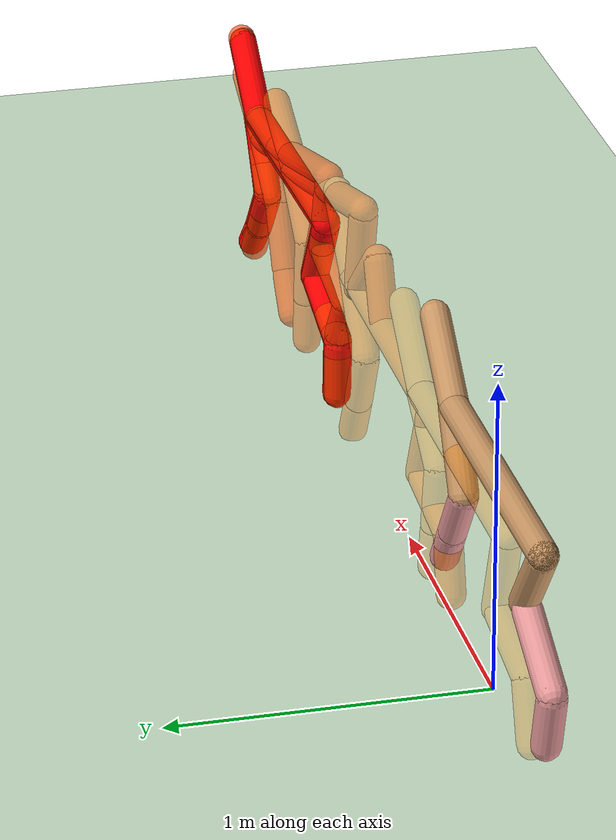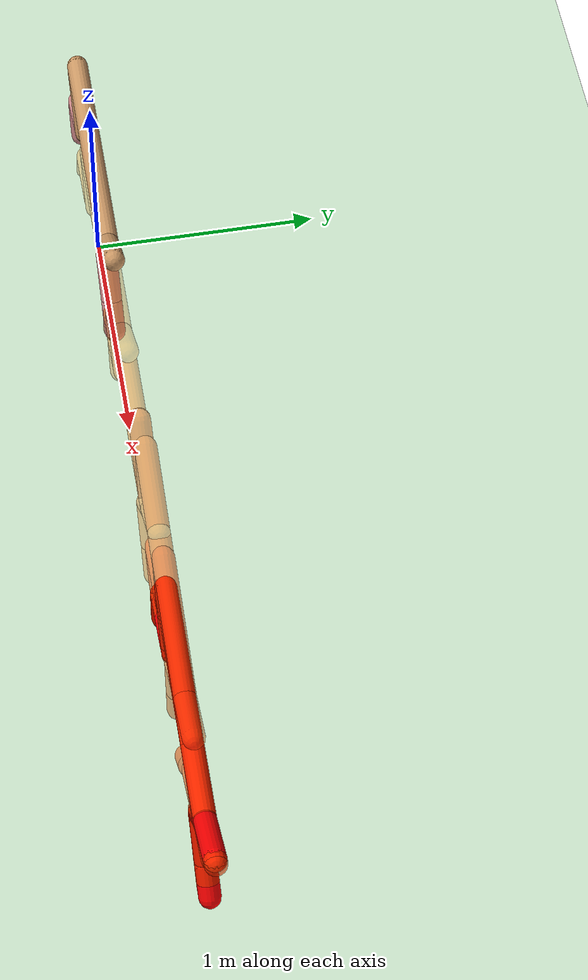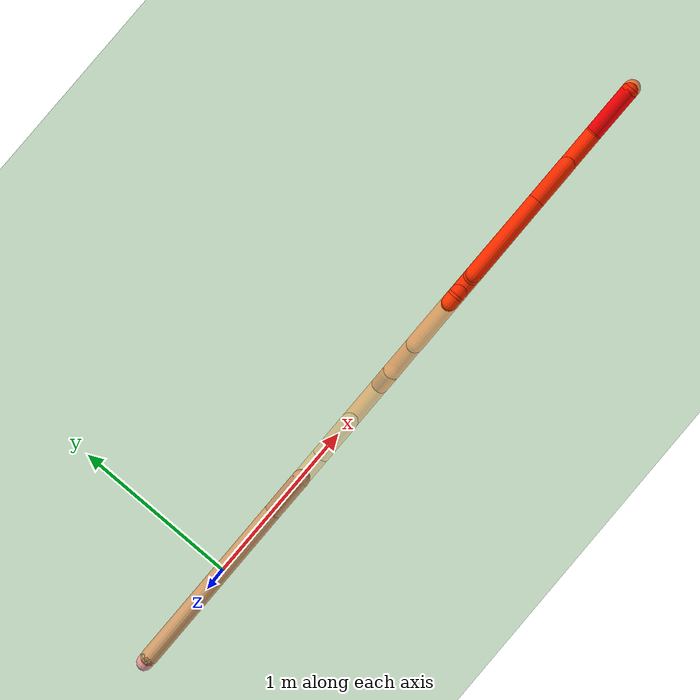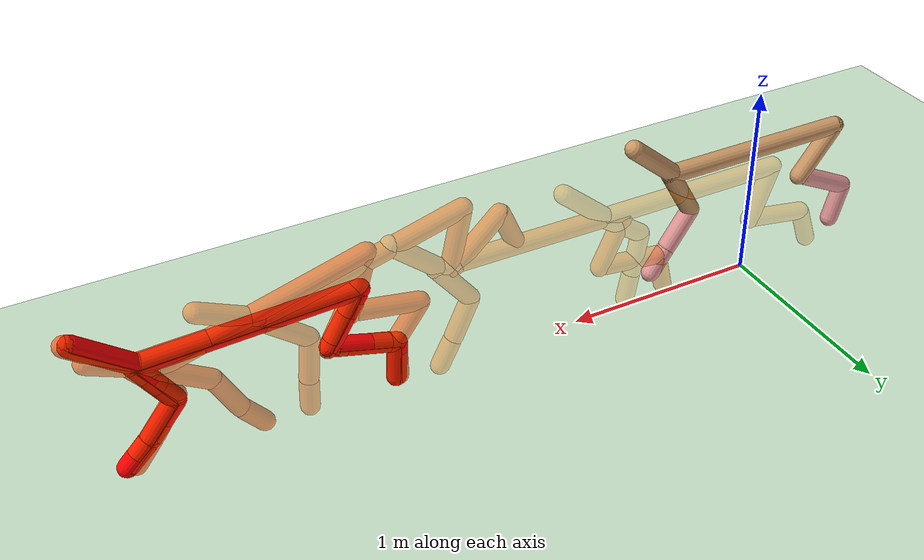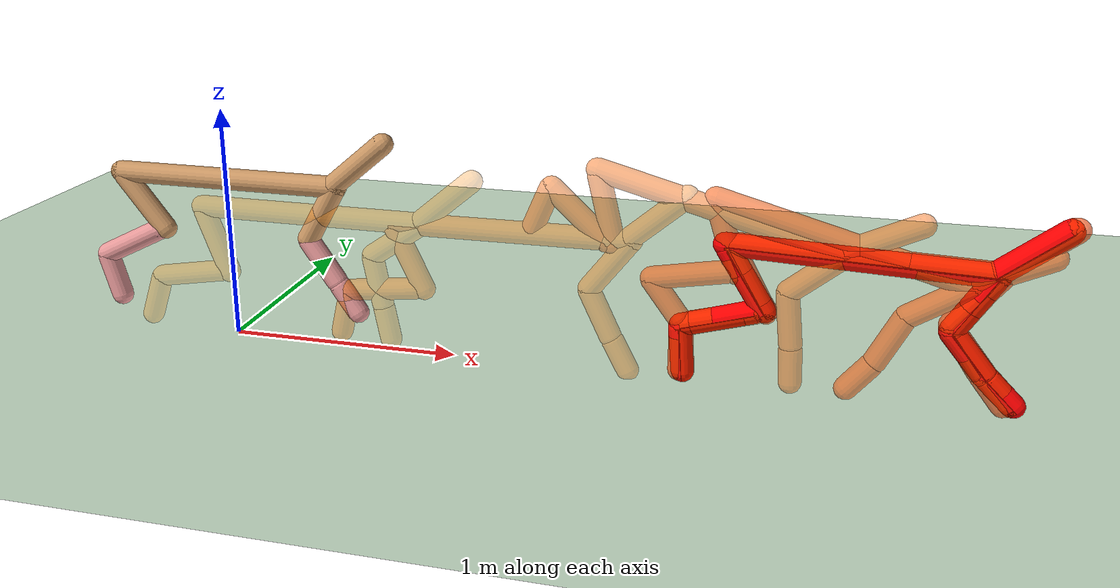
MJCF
<mujoco model="cheetah">
  <compiler angle="radian" coordinate="local" inertiafromgeom="true" settotalmass="14"/>
  <option solver="Newton"
            iterations="5"
            noslip_iterations="0"
            noslip_tolerance="1e-8"/>
  <default>
  <geom margin="0.0" gap="0.0"
        solimp="0.0001 0.8 0.001 0.5 2"
        solref="0.02 1"
        conaffinity="0" condim="3" contype="1" friction=".4 .1 .1" rgba="0.8 0.6 .4 1"/>
    <joint armature=".1" damping=".01" limited="true" solimplimit="0 .8 .03" solreflimit=".02 1" stiffness="8"/>
    <motor ctrllimited="false" ctrlrange="-1 1"/>
  </default>
  <size nstack="300000" nuser_geom="1"/>
  <option gravity="0 0 -9.81" timestep="0.02"/>
  <asset>
    <texture type="skybox" builtin="gradient" rgb1="0.5 .5 .5" rgb2="0.9 0.9 0.9" width="512" height="3072"/>
    <texture type="2d" name="groundplane" builtin="checker" mark="edge" rgb1="0.9 0.9 0.9" rgb2="0.5 0.5 0.5"
      markrgb="0.8 0.8 0.8" width="300" height="300"/>
    <material name="groundplane" texture="groundplane" texuniform="true" texrepeat="1.5 1.5" reflectance="0.2"/>
  </asset>
  <worldbody>
    <light cutoff="100" diffuse="1 1 1" dir="-0 0 -1.3" directional="true" exponent="1" pos="0 0 1.3" specular=".1 .1 .1"/>
    <geom conaffinity="1" condim="3" material="groundplane" name="floor" pos="0 0 0" rgba="0.8 0.9 0.8 1" size="40 40 40" type="plane"/>
    <body name="torso" pos="0 0 .7">
      <camera name="track" mode="trackcom" pos="0 -3 0.3" xyaxes="1 0 0 0 0 1"/>
      <joint armature="0" axis="1 0 0" damping="0" limited="false" name="rootx" pos="0 0 0" stiffness="0" type="slide"/>
      <joint armature="0" axis="0 0 1" damping="0" limited="false" name="rootz" pos="0 0 0" stiffness="0" type="slide"/>
      <joint armature="0" axis="0 1 0" damping="0" limited="false" name="rooty" pos="0 0 0" stiffness="0" type="hinge"/>
      <geom fromto="-.5 0 0 .5 0 0" name="torso" size="0.046" type="capsule"/>
      <geom axisangle="0 1 0 .87" name="head" pos=".6 0 .1" size="0.046 .15" type="capsule"/>
      <body name="bthigh" pos="-.5 0 0">
        <joint axis="0 1 0" damping="6" name="bthigh" pos="0 0 0" range="-.52 1.05" stiffness="240" type="hinge"/>
        <geom axisangle="0 1 0 -3.8" name="bthigh" pos=".1 0 -.13" size="0.046 .145" type="capsule"/>
        <body name="bshin" pos=".16 0 -.25">
          <joint axis="0 1 0" damping="4.5" name="bshin" pos="0 0 0" range="-.785 .785" stiffness="180" type="hinge"/>
          <geom axisangle="0 1 0 -2.03" name="bshin" pos="-.14 0 -.07" rgba="0.9 0.6 0.6 1" size="0.046 .15" type="capsule"/>
          <body name="bfoot" pos="-.28 0 -.14">
            <joint axis="0 1 0" damping="3" name="bfoot" pos="0 0 0" range="-.4 .785" stiffness="120" type="hinge"/>
            <geom axisangle="0 1 0 -.27" name="bfoot" pos=".03 0 -.097" rgba="0.9 0.6 0.6 1" size="0.046 .094" type="capsule"/>
          </body>
        </body>
      </body>
      <body name="fthigh" pos=".5 0 0">
        <joint axis="0 1 0" damping="4.5" name="fthigh" pos="0 0 0" range="-1 .7" stiffness="180" type="hinge"/>
        <geom axisangle="0 1 0 .52" name="fthigh" pos="-.07 0 -.12" size="0.046 .133" type="capsule"/>
        <body name="fshin" pos="-.14 0 -.24">
          <joint axis="0 1 0" damping="3" name="fshin" pos="0 0 0" range="-1.2 .87" stiffness="120" type="hinge"/>
          <geom axisangle="0 1 0 -.6" name="fshin" pos=".065 0 -.09" rgba="0.9 0.6 0.6 1" size="0.046 .106" type="capsule"/>
          <body name="ffoot" pos=".13 0 -.18">
            <joint axis="0 1 0" damping="1.5" name="ffoot" pos="0 0 0" range="-.5 .5" stiffness="60" type="hinge"/>
            <geom axisangle="0 1 0 -.6" name="ffoot" pos=".045 0 -.07" rgba="0.9 0.6 0.6 1" size="0.046 .07" type="capsule"/>
          </body>
        </body>
      </body>
    </body>

        <geom type="capsule" size="0.046 0.5 0.0" pos="0.0 0.0 0.7" quat="0.7071067811865476 0.0 -0.7071067811865475 0.0" rgba="1.0 0.6 0.0 0.2" contype="0" conaffinity="0"/>
        <geom type="capsule" size="0.046 0.15 0.0" pos="0.6 0.0 0.7999999999999999" quat="0.9068700422993365 0.0 0.4214104013666481 0.0" rgba="1.0 0.6 0.0 0.2" contype="0" conaffinity="0"/>
        <geom type="capsule" size="0.046 0.145 0.0" pos="-0.4 0.0 0.57" quat="0.32328956686350335 0.0 0.9463000876874145 0.0" rgba="1.0 0.6 0.0 0.2" contype="0" conaffinity="0"/>
        <geom type="capsule" size="0.046 0.15 0.0" pos="-0.48 0.0 0.37999999999999995" quat="0.5276199315484069 0.0 -0.8494805517684643 0.0" rgba="1.0 0.6 0.0 0.2" contype="0" conaffinity="0"/>
        <geom type="capsule" size="0.046 0.094 0.0" pos="-0.59 0.0 0.21299999999999994" quat="0.9909013312045479 0.0 -0.1345903110073483 0.0" rgba="1.0 0.6 0.0 0.2" contype="0" conaffinity="0"/>
        <geom type="capsule" size="0.046 0.133 0.0" pos="0.43 0.0 0.58" quat="0.9663899781345131 0.0 0.2570805518921552 0.0" rgba="1.0 0.6 0.0 0.2" contype="0" conaffinity="0"/>
        <geom type="capsule" size="0.046 0.106 0.0" pos="0.425 0.0 0.37" quat="0.955336489125606 0.0 -0.29552020666133955 0.0" rgba="1.0 0.6 0.0 0.2" contype="0" conaffinity="0"/>
        <geom type="capsule" size="0.046 0.07 0.0" pos="0.535 0.0 0.20999999999999996" quat="0.955336489125606 0.0 -0.29552020666133955 0.0" rgba="1.0 0.6 0.0 0.2" contype="0" conaffinity="0"/>
        <geom type="capsule" size="0.046 0.5 0.0" pos="0.3757597918607597 0.0 0.5716085944845795" quat="0.7071409914781057 0.0 -0.7070725692397929 0.0" rgba="1.0 0.533 0.0 0.289" contype="0" conaffinity="0"/>
        <geom type="capsule" size="0.046 0.15 0.0" pos="0.9757694654175257 0.0 0.6715505358220533" quat="0.9068496526320862 0.0 0.4214542769044641 0.0" rgba="1.0 0.533 0.0 0.289" contype="0" conaffinity="0"/>
        <geom type="capsule" size="0.046 0.145 0.0" pos="-0.0687048488903039 0.0 0.41733321231983245" quat="0.1731950705370843 0.0 0.9848875405555979 0.0" rgba="1.0 0.533 0.0 0.289" contype="0" conaffinity="0"/>
        <geom type="capsule" size="0.046 0.15 0.0" pos="-0.202391616951191 0.0 0.2577819346825645" quat="0.6450282846393013 0.0 -0.764158695570024 0.0" rgba="1.0 0.533 0.0 0.289" contype="0" conaffinity="0"/>
        <geom type="capsule" size="0.046 0.094 0.0" pos="-0.38720426514459116 0.0 0.13401590175482242" quat="0.9858901352941377 0.0 0.16739367111604575 0.0" rgba="1.0 0.533 0.0 0.289" contype="0" conaffinity="0"/>
        <geom type="capsule" size="0.046 0.133 0.0" pos="0.7613184036994838 0.0 0.492800011973812" quat="0.8870065506672206 0.0 0.46175683976898463 0.0" rgba="1.0 0.533 0.0 0.289" contype="0" conaffinity="0"/>
        <geom type="capsule" size="0.046 0.106 0.0" pos="0.6698403176612077 0.0 0.3054226539770445" quat="0.9958230956408873 0.0 -0.09130368113170625 0.0" rgba="1.0 0.533 0.0 0.289" contype="0" conaffinity="0"/>
        <geom type="capsule" size="0.046 0.07 0.0" pos="0.7061020639221286 0.0 0.11465836450764037" quat="0.9955308396762497 0.0 -0.09443700150630316 0.0" rgba="1.0 0.533 0.0 0.289" contype="0" conaffinity="0"/>
        <geom type="capsule" size="0.046 0.5 0.0" pos="1.2448169279215695 0.0 0.5707966474003805" quat="0.7046606271697095 0.0 -0.7095445021397824 0.0" rgba="1.0 0.467 0.0 0.378" contype="0" conaffinity="0"/>
        <geom type="capsule" size="0.046 0.15 0.0" pos="1.8441119364773773 0.0 0.6749383427970583" quat="0.9083199421399065 0.0 0.4182760843162766 0.0" rgba="1.0 0.467 0.0 0.378" contype="0" conaffinity="0"/>
        <geom type="capsule" size="0.046 0.145 0.0" pos="0.814709091259254 0.0 0.4189628154041264" quat="0.21962154096158407 0.0 0.9755851468455531 0.0" rgba="1.0 0.467 0.0 0.378" contype="0" conaffinity="0"/>
        <geom type="capsule" size="0.046 0.15 0.0" pos="0.692353543516237 0.0 0.26936682365639886" quat="0.6631650788492296 0.0 -0.7484731646457977 0.0" rgba="1.0 0.467 0.0 0.378" contype="0" conaffinity="0"/>
        <geom type="capsule" size="0.046 0.094 0.0" pos="0.5168514783509595 0.0 0.15032390563736442" quat="0.9933804138985987 0.0 0.11487102890916003 0.0" rgba="1.0 0.467 0.0 0.378" contype="0" conaffinity="0"/>
        <geom type="capsule" size="0.046 0.133 0.0" pos="1.6589129957411237 0.0 0.4650595570562044" quat="0.9462919259905692 0.0 0.3233134559604024 0.0" rgba="1.0 0.467 0.0 0.378" contype="0" conaffinity="0"/>
        <geom type="capsule" size="0.046 0.106 0.0" pos="1.623107322269771 0.0 0.25679152440341346" quat="0.9756157724324233 0.0 -0.2194854541446561 0.0" rgba="1.0 0.467 0.0 0.378" contype="0" conaffinity="0"/>
        <geom type="capsule" size="0.046 0.07 0.0" pos="1.7099000668088435 0.0 0.08303038788053786" quat="0.9706829237315477 0.0 -0.24036360285195907 0.0" rgba="1.0 0.467 0.0 0.378" contype="0" conaffinity="0"/>
        <geom type="capsule" size="0.046 0.5 0.0" pos="2.088113827382586 0.0 0.7247477390407485" quat="0.7943606933817023 0.0 -0.6074463670235761 0.0" rgba="1.0 0.4 0.0 0.467" contype="0" conaffinity="0"/>
        <geom type="capsule" size="0.046 0.15 0.0" pos="2.6933534303818103 0.0 0.6640433490731267" quat="0.8432171905298761 0.0 0.5375730365214596 0.0" rgba="1.0 0.4 0.0 0.467" contype="0" conaffinity="0"/>
        <geom type="capsule" size="0.046 0.145 0.0" pos="1.6427611163821065 0.0 0.6960139309534362" quat="0.11543338446738999 0.0 0.9933152237585023 0.0" rgba="1.0 0.4 0.0 0.467" contype="0" conaffinity="0"/>
        <geom type="capsule" size="0.046 0.15 0.0" pos="1.5320634105210051 0.0 0.6674590548012541" quat="0.9158092990322744 0.0 -0.401613405909233 0.0" rgba="1.0 0.4 0.0 0.467" contype="0" conaffinity="0"/>
        <geom type="capsule" size="0.046 0.094 0.0" pos="1.3792525878659823 0.0 0.6785055232422215" quat="0.9795594822803799 0.0 0.20115471825088752 0.0" rgba="1.0 0.4 0.0 0.467" contype="0" conaffinity="0"/>
        <geom type="capsule" size="0.046 0.133 0.0" pos="2.4626102267188243 0.0 0.5063980396340974" quat="0.904143604027456 0.0 0.42722867798901676 0.0" rgba="1.0 0.4 0.0 0.467" contype="0" conaffinity="0"/>
        <geom type="capsule" size="0.046 0.106 0.0" pos="2.3693849110561707 0.0 0.3090314828184392" quat="0.9985338733045175 0.0 -0.054130433800938293 0.0" rgba="1.0 0.4 0.0 0.467" contype="0" conaffinity="0"/>
        <geom type="capsule" size="0.046 0.07 0.0" pos="2.385530102545593 0.0 0.11579984462061702" quat="0.9997501333589416 0.0 -0.022353318518251286 0.0" rgba="1.0 0.4 0.0 0.467" contype="0" conaffinity="0"/>
        <geom type="capsule" size="0.046 0.5 0.0" pos="2.549705671850395 0.0 0.6414348950499609" quat="0.795352604582661 0.0 -0.6061470402332897 0.0" rgba="1.0 0.333 0.0 0.556" contype="0" conaffinity="0"/>
        <geom type="capsule" size="0.046 0.15 0.0" pos="3.1547435776252213 0.0 0.5787521017521773" quat="0.8423373110384603 0.0 0.5389506975897668 0.0" rgba="1.0 0.333 0.0 0.556" contype="0" conaffinity="0"/>
        <geom type="capsule" size="0.046 0.145 0.0" pos="2.116203923408119 0.0 0.6173740871878768" quat="0.15118864448761246 0.0 0.9885049285552391 0.0" rgba="1.0 0.333 0.0 0.556" contype="0" conaffinity="0"/>
        <geom type="capsule" size="0.046 0.15 0.0" pos="1.976852189764705 0.0 0.4555532365092978" quat="0.6413316585069353 0.0 -0.7672637771957854 0.0" rgba="1.0 0.333 0.0 0.556" contype="0" conaffinity="0"/>
        <geom type="capsule" size="0.046 0.094 0.0" pos="1.885696651065655 0.0 0.34729158782443026" quat="0.9497953850310271 0.0 -0.31287174141133745 0.0" rgba="1.0 0.333 0.0 0.556" contype="0" conaffinity="0"/>
        <geom type="capsule" size="0.046 0.133 0.0" pos="2.913445301635843 0.0 0.4361121079880903" quat="0.8747670181815025 0.0 0.4845437688195392 0.0" rgba="1.0 0.333 0.0 0.556" contype="0" conaffinity="0"/>
        <geom type="capsule" size="0.046 0.106 0.0" pos="2.7475194634866376 0.0 0.26306264500719745" quat="0.9727173084243087 0.0 0.23199361605821875 0.0" rgba="1.0 0.333 0.0 0.556" contype="0" conaffinity="0"/>
        <geom type="capsule" size="0.046 0.07 0.0" pos="2.6454546815772892 0.0 0.09986334943288072" quat="0.9418491306483066 0.0 0.3360360324385304 0.0" rgba="1.0 0.333 0.0 0.556" contype="0" conaffinity="0"/>
        <geom type="capsule" size="0.046 0.5 0.0" pos="2.629955119171622 0.0 0.5813721124437046" quat="0.7193719644556403 0.0 -0.6946250619976455 0.0" rgba="1.0 0.267 0.0 0.644" contype="0" conaffinity="0"/>
        <geom type="capsule" size="0.046 0.15 0.0" pos="3.2330868783118163 0.0 0.6603156436318577" quat="0.8993570525226495 0.0 0.4372149266410885 0.0" rgba="1.0 0.267 0.0 0.644" contype="0" conaffinity="0"/>
        <geom type="capsule" size="0.046 0.145 0.0" pos="2.209111344805196 0.0 0.45505341397498444" quat="0.24945246740783017 0.0 0.9683870437506614 0.0" rgba="1.0 0.267 0.0 0.644" contype="0" conaffinity="0"/>
        <geom type="capsule" size="0.046 0.15 0.0" pos="2.0989943885539306 0.0 0.2859601547081647" quat="0.6084473004511252 0.0 -0.7935942808348221 0.0" rgba="1.0 0.267 0.0 0.644" contype="0" conaffinity="0"/>
        <geom type="capsule" size="0.046 0.094 0.0" pos="1.9508775857113194 0.0 0.143164582064152" quat="0.9999996074525547 0.0 0.0008860557185038087 0.0" rgba="1.0 0.267 0.0 0.644" contype="0" conaffinity="0"/>
        <geom type="capsule" size="0.046 0.133 0.0" pos="3.0432761130643766 0.0 0.45506552372769415" quat="0.9455765671862919 0.0 0.3253996859067142 0.0" rgba="1.0 0.267 0.0 0.644" contype="0" conaffinity="0"/>
        <geom type="capsule" size="0.046 0.106 0.0" pos="3.0208779836471247 0.0 0.2555232585601527" quat="0.9569976352259104 0.0 -0.29009571898257175 0.0" rgba="1.0 0.267 0.0 0.644" contype="0" conaffinity="0"/>
        <geom type="capsule" size="0.046 0.07 0.0" pos="3.133778955757559 0.0 0.0974772426508346" quat="0.9464996803382765 0.0 -0.32270474914314556 0.0" rgba="1.0 0.267 0.0 0.644" contype="0" conaffinity="0"/>
        <geom type="capsule" size="0.046 0.5 0.0" pos="2.617644148989102 0.0 0.5779004987252387" quat="0.7183847403453809 0.0 -0.695646005407132 0.0" rgba="1.0 0.2 0.0 0.733" contype="0" conaffinity="0"/>
        <geom type="capsule" size="0.046 0.15 0.0" pos="3.2205492459813665 0.0 0.6585568315252592" quat="0.8999770732367434 0.0 0.43593722902297 0.0" rgba="1.0 0.2 0.0 0.733" contype="0" conaffinity="0"/>
        <geom type="capsule" size="0.046 0.145 0.0" pos="2.203758712165191 0.0 0.4542318630739667" quat="0.27329534455196625 0.0 0.9619301713982268 0.0" rgba="1.0 0.2 0.0 0.733" contype="0" conaffinity="0"/>
        <geom type="capsule" size="0.046 0.15 0.0" pos="2.1007577052003947 0.0 0.2843056154053768" quat="0.60049253515499 0.0 -0.7996303616191253 0.0" rgba="1.0 0.2 0.0 0.733" contype="0" conaffinity="0"/>
        <geom type="capsule" size="0.046 0.094 0.0" pos="1.9607352024521878 0.0 0.13896653702408535" quat="0.9993929828724879 0.0 -0.03483770637156104 0.0" rgba="1.0 0.2 0.0 0.733" contype="0" conaffinity="0"/>
        <geom type="capsule" size="0.046 0.133 0.0" pos="3.0423820358553977 0.0 0.44488600924799204" quat="0.9607468195106179 0.0 0.2774266548120998 0.0" rgba="1.0 0.2 0.0 0.733" contype="0" conaffinity="0"/>
        <geom type="capsule" size="0.046 0.106 0.0" pos="3.038048067984621 0.0 0.24232803593753666" quat="0.9453036036495508 0.0 -0.32619181002467357 0.0" rgba="1.0 0.2 0.0 0.733" contype="0" conaffinity="0"/>
        <geom type="capsule" size="0.046 0.07 0.0" pos="3.1649620658572126 0.0 0.09537627760792122" quat="0.9266444127453953 0.0 -0.3759390008069675 0.0" rgba="1.0 0.2 0.0 0.733" contype="0" conaffinity="0"/>
        <geom type="capsule" size="0.046 0.5 0.0" pos="2.6129057013035455 0.0 0.5762744062169568" quat="0.7196576670737775 0.0 -0.6943290590360797 0.0" rgba="1.0 0.133 0.0 0.822" contype="0" conaffinity="0"/>
        <geom type="capsule" size="0.046 0.15 0.0" pos="3.2161022098280836 0.0 0.6547216630447575" quat="0.8991771095059287 0.0 0.43758487832712295 0.0" rgba="1.0 0.133 0.0 0.822" contype="0" conaffinity="0"/>
        <geom type="capsule" size="0.046 0.145 0.0" pos="2.19926047208637 0.0 0.45454578573470267" quat="0.2739080306479449 0.0 0.9617558893745151 0.0" rgba="1.0 0.133 0.0 0.822" contype="0" conaffinity="0"/>
        <geom type="capsule" size="0.046 0.15 0.0" pos="2.096501058344291 0.0 0.2844041467233531" quat="0.5997582872600585 0.0 -0.8001812275121689 0.0" rgba="1.0 0.133 0.0 0.822" contype="0" conaffinity="0"/>
        <geom type="capsule" size="0.046 0.094 0.0" pos="1.9577207135500918 0.0 0.13891230242418467" quat="0.9991762641578217 0.0 -0.04058069915143302 0.0" rgba="1.0 0.133 0.0 0.822" contype="0" conaffinity="0"/>
        <geom type="capsule" size="0.046 0.133 0.0" pos="3.03781718181505 0.0 0.44127846368267853" quat="0.9610259052305964 0.0 0.2764583322595156 0.0" rgba="1.0 0.133 0.0 0.822" contype="0" conaffinity="0"/>
        <geom type="capsule" size="0.046 0.106 0.0" pos="3.03471409875223 0.0 0.2394006733280618" quat="0.9433828332529028 0.0 -0.33170593893345607 0.0" rgba="1.0 0.133 0.0 0.822" contype="0" conaffinity="0"/>
        <geom type="capsule" size="0.046 0.07 0.0" pos="3.1638291723089114 0.0 0.09440825575610284" quat="0.9228684203797112 0.0 -0.3851154095409018 0.0" rgba="1.0 0.133 0.0 0.822" contype="0" conaffinity="0"/>
        <geom type="capsule" size="0.046 0.5 0.0" pos="2.610194775475432 0.0 0.5750545208660466" quat="0.7205926345353296 0.0 -0.6933586770593072 0.0" rgba="1.0 0.067 0.0 0.911" contype="0" conaffinity="0"/>
        <geom type="capsule" size="0.046 0.15 0.0" pos="3.213600511400862 0.0 0.6518758580861855" quat="0.8985866396810865 0.0 0.43879613829961295 0.0" rgba="1.0 0.067 0.0 0.911" contype="0" conaffinity="0"/>
        <geom type="capsule" size="0.046 0.145 0.0" pos="2.1966805196584844 0.0 0.4547223639301643" quat="0.2741866668672378 0.0 0.9616764901526054 0.0" rgba="1.0 0.067 0.0 0.911" contype="0" conaffinity="0"/>
        <geom type="capsule" size="0.046 0.15 0.0" pos="2.0940455417734567 0.0 0.2844345628478645" quat="0.5992952462556634 0.0 -0.8005280805914079 0.0" rgba="1.0 0.067 0.0 0.911" contype="0" conaffinity="0"/>
        <geom type="capsule" size="0.046 0.094 0.0" pos="1.9560214627503196 0.0 0.13885025458444172" quat="0.9990284377577916 0.0 -0.04407017757198343 0.0" rgba="1.0 0.067 0.0 0.911" contype="0" conaffinity="0"/>
        <geom type="capsule" size="0.046 0.133 0.0" pos="3.035063423769526 0.0 0.43870736653861264" quat="0.9610344551014448 0.0 0.2764286094236067 0.0" rgba="1.0 0.067 0.0 0.911" contype="0" conaffinity="0"/>
        <geom type="capsule" size="0.046 0.106 0.0" pos="3.032601539812154 0.0 0.23736486792904724" quat="0.9421321858231875 0.0 -0.33524162097809873 0.0" rgba="1.0 0.067 0.0 0.911" contype="0" conaffinity="0"/>
        <geom type="capsule" size="0.046 0.07 0.0" pos="3.1631858186632544 0.0 0.09372064099000729" quat="0.9201564230238226 0.0 -0.39155096369183434 0.0" rgba="1.0 0.067 0.0 0.911" contype="0" conaffinity="0"/>
        <geom type="capsule" size="0.046 0.5 0.0" pos="2.6087493329202016 0.0 0.5767945532330596" quat="0.7197441257239147 0.0 -0.694239435271375 0.0" rgba="1.0 0.0 0.0 1.0" contype="0" conaffinity="0"/>
        <geom type="capsule" size="0.046 0.15 0.0" pos="3.2119653606819702 0.0 0.655091576492653" quat="0.8991226104467027 0.0 0.4376968487246701 0.0" rgba="1.0 0.0 0.0 1.0" contype="0" conaffinity="0"/>
        <geom type="capsule" size="0.046 0.145 0.0" pos="2.1962516578426943 0.0 0.4559011559879057" quat="0.2778522722883518 0.0 0.9606238154367189 0.0" rgba="1.0 0.0 0.0 1.0" contype="0" conaffinity="0"/>
        <geom type="capsule" size="0.046 0.15 0.0" pos="2.0948007077879405 0.0 0.28522134602856486" quat="0.5972720568145045 0.0 -0.8020387086347961 0.0" rgba="1.0 0.0 0.0 1.0" contype="0" conaffinity="0"/>
        <geom type="capsule" size="0.046 0.094 0.0" pos="1.9570130865738549 0.0 0.1388811988000719" quat="0.9990265744702207 0.0 -0.04411239624296674 0.0" rgba="1.0 0.0 0.0 1.0" contype="0" conaffinity="0"/>
        <geom type="capsule" size="0.046 0.133 0.0" pos="3.035613061546666 0.0 0.4404474600625906" quat="0.9632906002109178 0.0 0.2684608342855431 0.0" rgba="1.0 0.0 0.0 1.0" contype="0" conaffinity="0"/>
        <geom type="capsule" size="0.046 0.106 0.0" pos="3.0355209817901527 0.0 0.23824541460631998" quat="0.9412911716620517 0.0 -0.3375958088470325 0.0" rgba="1.0 0.0 0.0 1.0" contype="0" conaffinity="0"/>
        <geom type="capsule" size="0.046 0.07 0.0" pos="3.165849992203769 0.0 0.09430820557332383" quat="0.9223563032745739 0.0 -0.38634032899719684 0.0" rgba="1.0 0.0 0.0 1.0" contype="0" conaffinity="0"/>
    </worldbody>
  <actuator>
    <motor gear="120" joint="bthigh" name="bthigh"/>
    <motor gear="90" joint="bshin" name="bshin"/>
    <motor gear="60" joint="bfoot" name="bfoot"/>
    <motor gear="120" joint="fthigh" name="fthigh"/>
    <motor gear="60" joint="fshin" name="fshin"/>
    <motor gear="30" joint="ffoot" name="ffoot"/>
  </actuator>
</mujoco>
